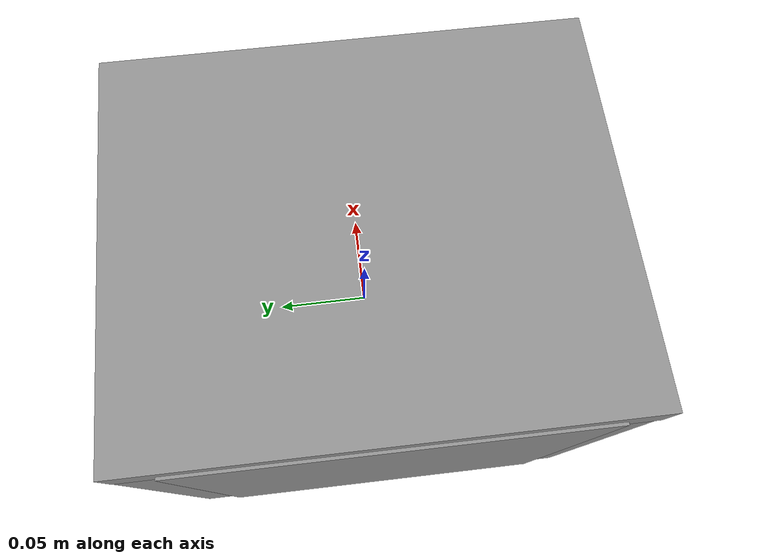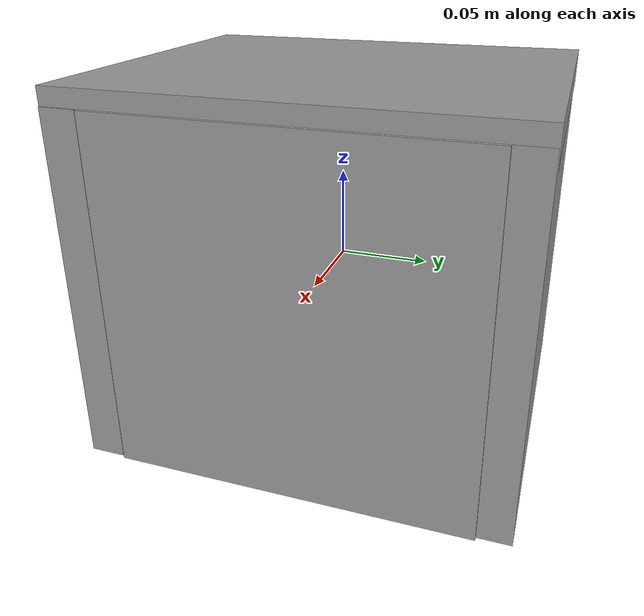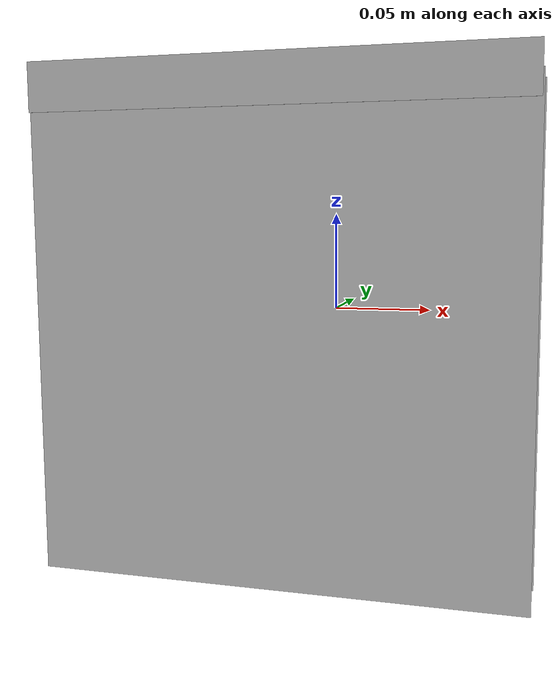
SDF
<?xml version='1.0'?>
<sdf version='1.7'>
  <model name='box_cover_test2'>
    <link name='link_4'>
      <inertial>
        <mass>0.060895</mass>
        <inertia>
          <ixx>0.0101492</ixx>
          <ixy>0</ixy>
          <ixz>0</ixz>
          <iyy>0.0050934</iyy>
          <iyz>0</iyz>
          <izz>0.0050934</izz>
        </inertia>
        <pose>0 0 0 0 -0 0</pose>
      </inertial>
      <pose>-0.091841 -0.001229 0 0 -0 0</pose>
      <gravity>1</gravity>
      <self_collide>0</self_collide>
      <kinematic>0</kinematic>
      <enable_wind>0</enable_wind>
      <visual name='visual'>
        <pose>0 0 0 0 -0 0</pose>
        <geometry>
          <box>
            <size>0.02 0.2 0.2</size>
          </box>
        </geometry>
        <material>
          <lighting>1</lighting>
          <script>
            <uri>file://media/materials/scripts/gazebo.material</uri>
            <name>Gazebo/Grey</name>
          </script>
          <shader type='pixel'>
            <normal_map>__default__</normal_map>
          </shader>
          <ambient>0.3 0.3 0.3 1</ambient>
          <diffuse>0.7 0.7 0.7 1</diffuse>
          <specular>0.01 0.01 0.01 1</specular>
          <emissive>0 0 0 1</emissive>
        </material>
        <transparency>0</transparency>
        <cast_shadows>1</cast_shadows>
      </visual>
      <collision name='collision'>
        <laser_retro>0</laser_retro>
        <max_contacts>10</max_contacts>
        <pose>0 0 0 0 -0 0</pose>
        <geometry>
          <box>
            <size>0.02 0.2 0.2</size>
          </box>
        </geometry>
        <surface>
          <friction>
            <ode>
              <mu>0</mu>
              <mu2>0</mu2>
              <fdir1>0 0 0</fdir1>
              <slip1>0</slip1>
              <slip2>0</slip2>
            </ode>
            <torsional>
              <coefficient>1</coefficient>
              <patch_radius>0</patch_radius>
              <surface_radius>0</surface_radius>
              <use_patch_radius>1</use_patch_radius>
              <ode>
                <slip>0</slip>
              </ode>
            </torsional>
          </friction>
          <bounce>
            <restitution_coefficient>0</restitution_coefficient>
            <threshold>1e+06</threshold>
          </bounce>
          <contact>
            <collide_without_contact>0</collide_without_contact>
            <collide_without_contact_bitmask>1</collide_without_contact_bitmask>
            <collide_bitmask>1</collide_bitmask>
            <ode>
              <soft_cfm>0</soft_cfm>
              <soft_erp>0.2</soft_erp>
              <kp>1e+13</kp>
              <kd>1</kd>
              <max_vel>0.01</max_vel>
              <min_depth>0</min_depth>
            </ode>
            <bullet>
              <split_impulse>1</split_impulse>
              <split_impulse_penetration_threshold>-0.01</split_impulse_penetration_threshold>
              <soft_cfm>0</soft_cfm>
              <soft_erp>0.2</soft_erp>
              <kp>1e+13</kp>
              <kd>1</kd>
            </bullet>
          </contact>
        </surface>
      </collision>
    </link>
    <link name='link_4_clone'>
      <inertial>
        <mass>0.060895</mass>
        <inertia>
          <ixx>0.0101492</ixx>
          <ixy>0</ixy>
          <ixz>0</ixz>
          <iyy>0.0050934</iyy>
          <iyz>0</iyz>
          <izz>0.0050934</izz>
        </inertia>
        <pose>0 0 0 0 -0 0</pose>
      </inertial>
      <pose>0.000308 -0.109875 -0 0 0 -1.5708</pose>
      <gravity>1</gravity>
      <self_collide>0</self_collide>
      <kinematic>0</kinematic>
      <enable_wind>0</enable_wind>
      <visual name='visual'>
        <pose>0 0 0 0 -0 0</pose>
        <geometry>
          <box>
            <size>0.02 0.2 0.2</size>
          </box>
        </geometry>
        <material>
          <lighting>1</lighting>
          <script>
            <uri>file://media/materials/scripts/gazebo.material</uri>
            <name>Gazebo/Grey</name>
          </script>
          <shader type='pixel'>
            <normal_map>__default__</normal_map>
          </shader>
          <ambient>0.3 0.3 0.3 1</ambient>
          <diffuse>0.7 0.7 0.7 1</diffuse>
          <specular>0.01 0.01 0.01 1</specular>
          <emissive>0 0 0 1</emissive>
        </material>
        <transparency>0</transparency>
        <cast_shadows>1</cast_shadows>
      </visual>
      <collision name='collision'>
        <laser_retro>0</laser_retro>
        <max_contacts>10</max_contacts>
        <pose>0 0 0 0 -0 0</pose>
        <geometry>
          <box>
            <size>0.02 0.2 0.2</size>
          </box>
        </geometry>
        <surface>
          <friction>
            <ode>
              <mu>0</mu>
              <mu2>0</mu2>
              <fdir1>0 0 0</fdir1>
              <slip1>0</slip1>
              <slip2>0</slip2>
            </ode>
            <torsional>
              <coefficient>1</coefficient>
              <patch_radius>0</patch_radius>
              <surface_radius>0</surface_radius>
              <use_patch_radius>1</use_patch_radius>
              <ode>
                <slip>0</slip>
              </ode>
            </torsional>
          </friction>
          <bounce>
            <restitution_coefficient>0</restitution_coefficient>
            <threshold>1e+06</threshold>
          </bounce>
          <contact>
            <collide_without_contact>0</collide_without_contact>
            <collide_without_contact_bitmask>1</collide_without_contact_bitmask>
            <collide_bitmask>1</collide_bitmask>
            <ode>
              <soft_cfm>0</soft_cfm>
              <soft_erp>0.2</soft_erp>
              <kp>1e+13</kp>
              <kd>1</kd>
              <max_vel>0.01</max_vel>
              <min_depth>0</min_depth>
            </ode>
            <bullet>
              <split_impulse>1</split_impulse>
              <split_impulse_penetration_threshold>-0.01</split_impulse_penetration_threshold>
              <soft_cfm>0</soft_cfm>
              <soft_erp>0.2</soft_erp>
              <kp>1e+13</kp>
              <kd>1</kd>
            </bullet>
          </contact>
        </surface>
      </collision>
    </link>
    <link name='link_4_clone_0'>
      <inertial>
        <mass>0.060895</mass>
        <inertia>
          <ixx>0.0101492</ixx>
          <ixy>0</ixy>
          <ixz>0</ixz>
          <iyy>0.0050934</iyy>
          <iyz>0</iyz>
          <izz>0.0050934</izz>
        </inertia>
        <pose>0 0 0 0 -0 0</pose>
      </inertial>
      <pose>0.091858 0.001569 -0 0 -0 0</pose>
      <gravity>1</gravity>
      <self_collide>0</self_collide>
      <kinematic>0</kinematic>
      <enable_wind>0</enable_wind>
      <visual name='visual'>
        <pose>0 0 0 0 -0 0</pose>
        <geometry>
          <box>
            <size>0.02 0.2 0.2</size>
          </box>
        </geometry>
        <material>
          <lighting>1</lighting>
          <script>
            <uri>file://media/materials/scripts/gazebo.material</uri>
            <name>Gazebo/Grey</name>
          </script>
          <shader type='pixel'>
            <normal_map>__default__</normal_map>
          </shader>
          <ambient>0.3 0.3 0.3 1</ambient>
          <diffuse>0.7 0.7 0.7 1</diffuse>
          <specular>0.01 0.01 0.01 1</specular>
          <emissive>0 0 0 1</emissive>
        </material>
        <transparency>0</transparency>
        <cast_shadows>1</cast_shadows>
      </visual>
      <collision name='collision'>
        <laser_retro>0</laser_retro>
        <max_contacts>10</max_contacts>
        <pose>0 0 0 0 -0 0</pose>
        <geometry>
          <box>
            <size>0.02 0.2 0.2</size>
          </box>
        </geometry>
        <surface>
          <friction>
            <ode>
              <mu>0</mu>
              <mu2>0</mu2>
              <fdir1>0 0 0</fdir1>
              <slip1>0</slip1>
              <slip2>0</slip2>
            </ode>
            <torsional>
              <coefficient>1</coefficient>
              <patch_radius>0</patch_radius>
              <surface_radius>0</surface_radius>
              <use_patch_radius>1</use_patch_radius>
              <ode>
                <slip>0</slip>
              </ode>
            </torsional>
          </friction>
          <bounce>
            <restitution_coefficient>0</restitution_coefficient>
            <threshold>1e+06</threshold>
          </bounce>
          <contact>
            <collide_without_contact>0</collide_without_contact>
            <collide_without_contact_bitmask>1</collide_without_contact_bitmask>
            <collide_bitmask>1</collide_bitmask>
            <ode>
              <soft_cfm>0</soft_cfm>
              <soft_erp>0.2</soft_erp>
              <kp>1e+13</kp>
              <kd>1</kd>
              <max_vel>0.01</max_vel>
              <min_depth>0</min_depth>
            </ode>
            <bullet>
              <split_impulse>1</split_impulse>
              <split_impulse_penetration_threshold>-0.01</split_impulse_penetration_threshold>
              <soft_cfm>0</soft_cfm>
              <soft_erp>0.2</soft_erp>
              <kp>1e+13</kp>
              <kd>1</kd>
            </bullet>
          </contact>
        </surface>
      </collision>
    </link>
    <link name='link_4_clone_1'>
      <inertial>
        <mass>0.060895</mass>
        <inertia>
          <ixx>0.0101492</ixx>
          <ixy>0</ixy>
          <ixz>0</ixz>
          <iyy>0.0050934</iyy>
          <iyz>0</iyz>
          <izz>0.0050934</izz>
        </inertia>
        <pose>0 0 0 0 -0 0</pose>
      </inertial>
      <pose>-0.000328 0.109533 -0 0 -0 1.5708</pose>
      <gravity>1</gravity>
      <self_collide>0</self_collide>
      <kinematic>0</kinematic>
      <enable_wind>0</enable_wind>
      <visual name='visual'>
        <pose>0 0 0 0 -0 0</pose>
        <geometry>
          <box>
            <size>0.02 0.2 0.2</size>
          </box>
        </geometry>
        <material>
          <lighting>1</lighting>
          <script>
            <uri>file://media/materials/scripts/gazebo.material</uri>
            <name>Gazebo/Grey</name>
          </script>
          <shader type='pixel'>
            <normal_map>__default__</normal_map>
          </shader>
          <ambient>0.3 0.3 0.3 1</ambient>
          <diffuse>0.7 0.7 0.7 1</diffuse>
          <specular>0.01 0.01 0.01 1</specular>
          <emissive>0 0 0 1</emissive>
        </material>
        <transparency>0</transparency>
        <cast_shadows>1</cast_shadows>
      </visual>
      <collision name='collision'>
        <laser_retro>0</laser_retro>
        <max_contacts>10</max_contacts>
        <pose>0 0 0 0 -0 0</pose>
        <geometry>
          <box>
            <size>0.02 0.2 0.2</size>
          </box>
        </geometry>
        <surface>
          <friction>
            <ode>
              <mu>0</mu>
              <mu2>0</mu2>
              <fdir1>0 0 0</fdir1>
              <slip1>0</slip1>
              <slip2>0</slip2>
            </ode>
            <torsional>
              <coefficient>1</coefficient>
              <patch_radius>0</patch_radius>
              <surface_radius>0</surface_radius>
              <use_patch_radius>1</use_patch_radius>
              <ode>
                <slip>0</slip>
              </ode>
            </torsional>
          </friction>
          <bounce>
            <restitution_coefficient>0</restitution_coefficient>
            <threshold>1e+06</threshold>
          </bounce>
          <contact>
            <collide_without_contact>0</collide_without_contact>
            <collide_without_contact_bitmask>1</collide_without_contact_bitmask>
            <collide_bitmask>1</collide_bitmask>
            <ode>
              <soft_cfm>0</soft_cfm>
              <soft_erp>0.2</soft_erp>
              <kp>1e+13</kp>
              <kd>1</kd>
              <max_vel>0.01</max_vel>
              <min_depth>0</min_depth>
            </ode>
            <bullet>
              <split_impulse>1</split_impulse>
              <split_impulse_penetration_threshold>-0.01</split_impulse_penetration_threshold>
              <soft_cfm>0</soft_cfm>
              <soft_erp>0.2</soft_erp>
              <kp>1e+13</kp>
              <kd>1</kd>
            </bullet>
          </contact>
        </surface>
      </collision>
    </link>
    <link name='top'>
      <inertial>
        <mass>0.060895</mass>
        <inertia>
          <ixx>0.0101492</ixx>
          <ixy>0</ixy>
          <ixz>0</ixz>
          <iyy>0.0050934</iyy>
          <iyz>0</iyz>
          <izz>0.0050934</izz>
        </inertia>
        <pose>0 0 0 0 -0 0</pose>
      </inertial>
      <pose>-0.000328 0.0 0.1 0 1.5708 1.5708</pose>
      <gravity>1</gravity>
      <self_collide>0</self_collide>
      <kinematic>0</kinematic>
      <enable_wind>0</enable_wind>
      <visual name='visual'>
        <pose>0 0 0 0 -0 0</pose>
        <geometry>
          <box>
            <size>0.02 0.2 0.24</size>
          </box>
        </geometry>
        <material>
          <lighting>1</lighting>
          <script>
            <uri>file://media/materials/scripts/gazebo.material</uri>
            <name>Gazebo/Grey</name>
          </script>
          <shader type='pixel'>
            <normal_map>__default__</normal_map>
          </shader>
          <ambient>0.3 0.3 0.3 1</ambient>
          <diffuse>0.7 0.7 0.7 1</diffuse>
          <specular>0.01 0.01 0.01 1</specular>
          <emissive>0 0 0 1</emissive>
        </material>
        <transparency>0</transparency>
        <cast_shadows>1</cast_shadows>
      </visual>
      <collision name='collision'>
        <laser_retro>0</laser_retro>
        <max_contacts>10</max_contacts>
        <pose>0 0 0 0 -0 0</pose>
        <geometry>
          <box>
            <size>0.02 0.2 0.2</size>
          </box>
        </geometry>
        <surface>
          <friction>
            <ode>
              <mu>0</mu>
              <mu2>0</mu2>
              <fdir1>0 0 0</fdir1>
              <slip1>0</slip1>
              <slip2>0</slip2>
            </ode>
            <torsional>
              <coefficient>1</coefficient>
              <patch_radius>0</patch_radius>
              <surface_radius>0</surface_radius>
              <use_patch_radius>1</use_patch_radius>
              <ode>
                <slip>0</slip>
              </ode>
            </torsional>
          </friction>
          <bounce>
            <restitution_coefficient>0</restitution_coefficient>
            <threshold>1e+06</threshold>
          </bounce>
          <contact>
            <collide_without_contact>0</collide_without_contact>
            <collide_without_contact_bitmask>1</collide_without_contact_bitmask>
            <collide_bitmask>1</collide_bitmask>
            <ode>
              <soft_cfm>0</soft_cfm>
              <soft_erp>0.2</soft_erp>
              <kp>1e+13</kp>
              <kd>1</kd>
              <max_vel>0.01</max_vel>
              <min_depth>0</min_depth>
            </ode>
            <bullet>
              <split_impulse>1</split_impulse>
              <split_impulse_penetration_threshold>-0.01</split_impulse_penetration_threshold>
              <soft_cfm>0</soft_cfm>
              <soft_erp>0.2</soft_erp>
              <kp>1e+13</kp>
              <kd>1</kd>
            </bullet>
          </contact>
        </surface>
      </collision>
    </link>
    <joint name='top_JOINT' type='fixed'>
      <parent>link_4_clone</parent>
      <child>top</child>
      <pose>0 0 0 0 -0 0</pose>
      <axis>
        <xyz>1 0 0</xyz>
        <limit>
          <lower>-1.79769e+308</lower>
          <upper>1.79769e+308</upper>
          <effort>-1</effort>
          <velocity>-1</velocity>
        </limit>
        <dynamics>
          <spring_reference>0</spring_reference>
          <spring_stiffness>0</spring_stiffness>
          <damping>0</damping>
        </dynamics>
      </axis>
      <physics>
        <ode>
          <limit>
            <cfm>0</cfm>
            <erp>0.2</erp>
          </limit>
          <suspension>
            <cfm>0</cfm>
            <erp>0.2</erp>
          </suspension>
        </ode>
      </physics>
    </joint>
    <joint name='link_4_clone_JOINT_5' type='fixed'>
      <parent>link_4_clone</parent>
      <child>link_4_clone_1</child>
      <pose>0 0 0 0 -0 0</pose>
      <axis>
        <xyz>1 0 0</xyz>
        <limit>
          <lower>-1.79769e+308</lower>
          <upper>1.79769e+308</upper>
          <effort>-1</effort>
          <velocity>-1</velocity>
        </limit>
        <dynamics>
          <spring_reference>0</spring_reference>
          <spring_stiffness>0</spring_stiffness>
          <damping>0</damping>
        </dynamics>
      </axis>
      <physics>
        <ode>
          <limit>
            <cfm>0</cfm>
            <erp>0.2</erp>
          </limit>
          <suspension>
            <cfm>0</cfm>
            <erp>0.2</erp>
          </suspension>
        </ode>
      </physics>
    </joint>
    <joint name='link_4_clone_JOINT_4' type='fixed'>
      <parent>link_4_clone</parent>
      <child>link_4_clone_0</child>
      <pose>0 0 0 0 -0 0</pose>
      <axis>
        <xyz>1 0 0</xyz>
        <limit>
          <lower>-1.79769e+308</lower>
          <upper>1.79769e+308</upper>
          <effort>-1</effort>
          <velocity>-1</velocity>
        </limit>
        <dynamics>
          <spring_reference>0</spring_reference>
          <spring_stiffness>0</spring_stiffness>
          <damping>0</damping>
        </dynamics>
      </axis>
      <physics>
        <ode>
          <limit>
            <cfm>0</cfm>
            <erp>0.2</erp>
          </limit>
          <suspension>
            <cfm>0</cfm>
            <erp>0.2</erp>
          </suspension>
        </ode>
      </physics>
    </joint>

    <joint name='link_4_clone_JOINT_6' type='fixed'>
      <parent>link_4_clone</parent>
      <child>link_4</child>
      <pose>0 0 0 0 -0 0</pose>
      <axis>
        <xyz>1 0 0</xyz>
        <limit>
          <lower>-1.79769e+308</lower>
          <upper>1.79769e+308</upper>
          <effort>-1</effort>
          <velocity>-1</velocity>
        </limit>
        <dynamics>
          <spring_reference>0</spring_reference>
          <spring_stiffness>0</spring_stiffness>
          <damping>0</damping>
        </dynamics>
      </axis>
      <physics>
        <ode>
          <limit>
            <cfm>0</cfm>
            <erp>0.2</erp>
          </limit>
          <suspension>
            <cfm>0</cfm>
            <erp>0.2</erp>
          </suspension>
        </ode>
      </physics>
    </joint>
    <static>0</static>
    <allow_auto_disable>1</allow_auto_disable>
  </model>
</sdf>
